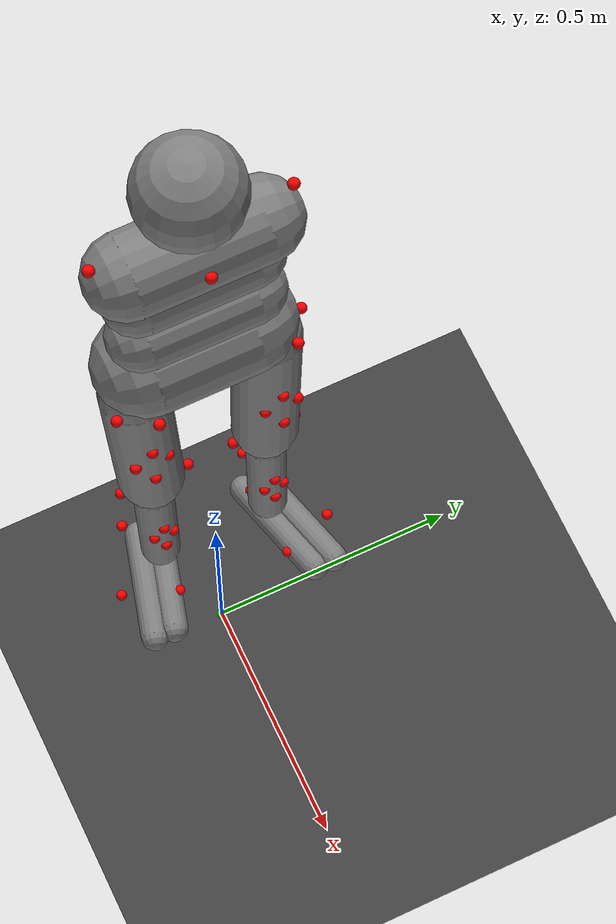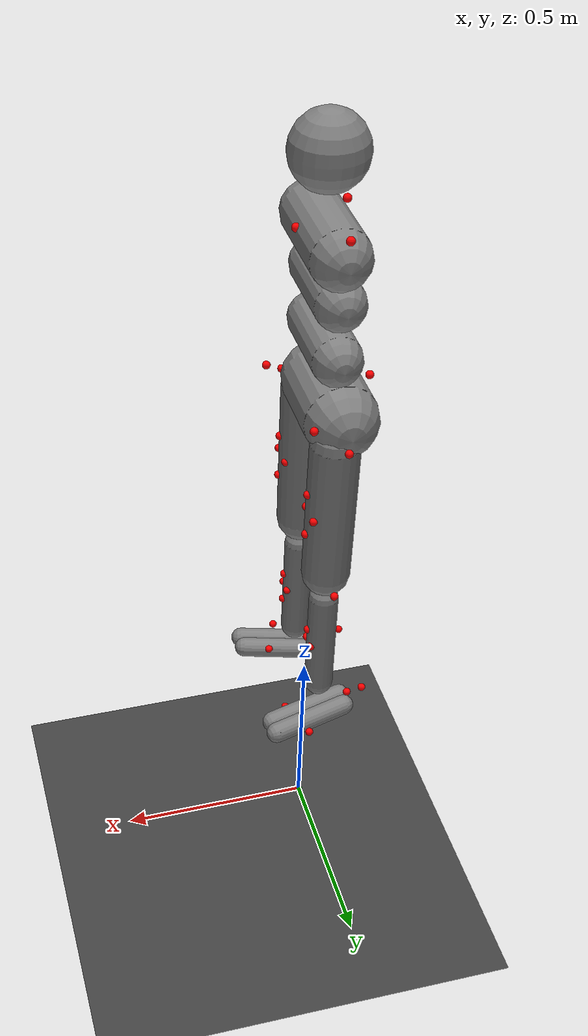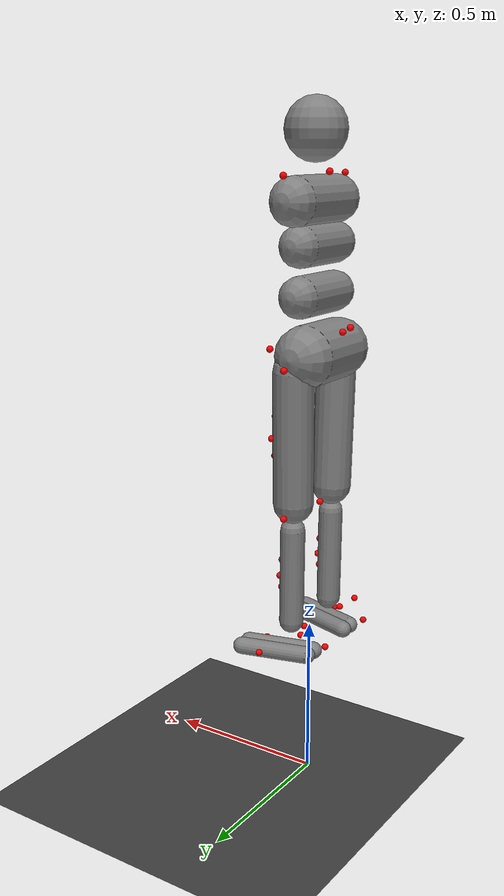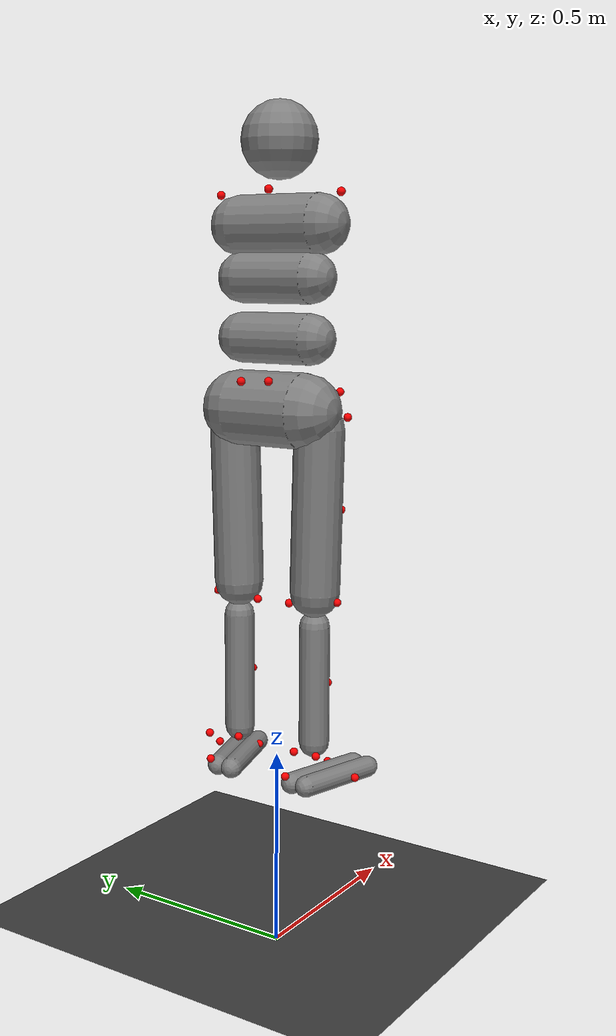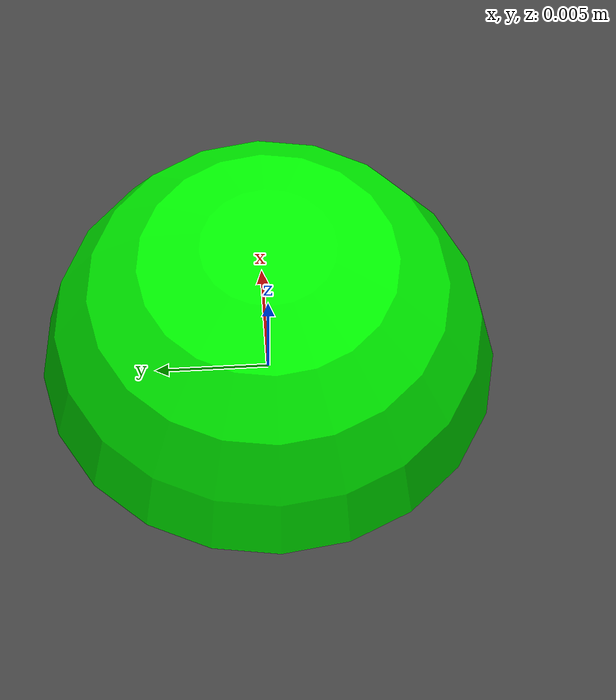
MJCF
<mujoco model="humanoid">
  <compiler settotalmass="50.0"/>
  <default>
    <default class="/"/>
    <default class="left_leg/"/>
    <default class="right_leg/"/>
  </default>
  <asset>
    <texture name="texplane" type="2d" builtin="checker" rgb1="0.20000000000000001 0.20000000000000001 0.20000000000000001" rgb2="0.29999999999999999 0.29999999999999999 0.29999999999999999" width="512" height="512"/>
    <material name="grid" class="/" texture="texplane" texrepeat="1 1" texuniform="true" reflectance="0.0"/>
  </asset>
  <worldbody>
    <geom name="floor" class="/" type="plane" conaffinity="1" size="100 100 0.20000000000000001" material="grid" pos="0 0 0"/>
    <body name="torso" pos="0.0000 0.0000 1.7925">
      <light name="top" class="/" mode="trackcom" pos="0 0 2"/>
      <camera name="back" class="/" mode="trackcom" pos="-3 0 1" xyaxes="0 -1 0 1 0 2"/>
      <camera name="side" class="/" mode="trackcom" pos="0 -3 1" xyaxes="1 0 0 0 1 2"/>
      <freejoint name="root"/>
      <geom name="torso" class="/" type="capsule" size="0.0700" fromto="0.0000 -0.1103 0.0000 0.0000 0.1103 0.0000"/>
      <site name="C7" class="/" type="sphere" rgba="1 0 0 1" size="0.0100" pos="-0.0450 0.0000 0.0779"/>
      <site name="RSHO" class="/" type="sphere" rgba="1 0 0 1" size="0.0100" pos="0.0000 -0.1654 0.0700"/>
      <site name="LSHO" class="/" type="sphere" rgba="1 0 0 1" size="0.0100" pos="0.0000 0.1654 0.0700"/>
      <site name="CLAV" class="/" type="sphere" rgba="1 0 0 1" size="0.0100" pos="0.0658 0.0000 0.0239"/>
      <geom name="upper_waist" class="/" type="capsule" size="0.0600" fromto="-0.0100 -0.0945 -0.1200 -0.0100 0.0945 -0.1200"/>
      <body name="head" pos="0.0000 0.0000 0.1900">
        <geom name="head" class="/" type="sphere" size="0.0900" pos="0.0000 0.0000 0.0000"/>
      </body>
      <camera name="egocentric" class="/" fovy="80.0" pos="0.089999999999999997 0 0" xyaxes="0 -1 0 0.10000000000000001 1 2"/>
      <body name="lower_waist" pos="-0.0100 0.0000 -0.2600" quat="1 0 -0.002 0">
        <geom name="lower_waist" class="/" type="capsule" size="0.0600" fromto="0.0000 -0.0945 0.0000 0.0000 0.0945 0.0000"/>
        <joint name="abdomen_z" class="/" type="hinge" pos="0 0 0.065000000000000002" axis="0 0 1" limited="true" solimplimit="0 0.98999999999999999 0.01" stiffness="20.0" range="-45 45" armature="0.01" damping="5.0"/>
        <joint name="abdomen_y" class="/" type="hinge" pos="0 0 0.065000000000000002" axis="0 1 0" limited="true" solimplimit="0 0.98999999999999999 0.01" stiffness="10.0" range="-75 30" armature="0.01" damping="5.0"/>
        <body name="pelvis" pos="0.0000 0.0000 -0.1650" quat="1 0 -0.002 0">
          <joint name="abdomen_x" class="/" type="hinge" pos="0 0 0.10000000000000001" axis="1 0 0" limited="true" solimplimit="0 0.98999999999999999 0.01" stiffness="10.0" range="-35 35" armature="0.01" damping="5.0"/>
          <geom name="butt" class="/" type="capsule" size="0.0900" fromto="-0.0200 -0.0903 0.0000 -0.0200 0.0903 0.0000"/>
          <site name="RASI" class="/" type="sphere" rgba="1 0 0 1" size="0.0100" pos="0.1013 -0.1148 0.0365"/>
          <site name="LASI" class="/" type="sphere" rgba="1 0 0 1" size="0.0100" pos="0.0624 0.1479 0.0219"/>
          <site name="RPSI" class="/" type="sphere" rgba="1 0 0 1" size="0.0100" pos="-0.0903 -0.0385 0.0725"/>
          <site name="LPSI" class="/" type="sphere" rgba="1 0 0 1" size="0.0100" pos="-0.1037 0.0288 0.0704"/>
          <site name="left_leg_site" class="/" size="9.9999999999999995e-07 9.9999999999999995e-07 9.9999999999999995e-07" pos="0 0.1202500737954795 -0.040000000000000001"/>
          <body pos="0.0000 0.1203 -0.0400" name="left_leg/">
            <body name="left_leg/thigh" pos="0.0000 0.0000 0.0000">
              <joint name="left_leg/hip_x" class="left_leg/" type="hinge" axis="1 0 0" limited="true" solimplimit="0 0.98999999999999999 0.01" stiffness="10.0" range="-25 5" armature="0.01" damping="5.0"/>
              <joint name="left_leg/hip_z" class="left_leg/" type="hinge" axis="0 0 1" limited="true" solimplimit="0 0.98999999999999999 0.01" stiffness="10.0" range="-60 35" armature="0.01" damping="5.0"/>
              <joint name="left_leg/hip_y" class="left_leg/" type="hinge" axis="0 1 0" limited="true" solimplimit="0 0.98999999999999999 0.01" stiffness="20.0" range="-110 20" armature="0.01" damping="5.0"/>
              <geom name="left_leg/thigh" class="left_leg/" type="capsule" size="0.0603" fromto="0.0000 0.0000 0.0000 0.0000 -0.0100 -0.3943"/>
              <site name="left_leg/LGT" class="left_leg/" type="sphere" rgba="1 0 0 1" size="0.0100" pos="-0.0103 0.0669 0.0153"/>
              <site name="left_leg/LT1" class="left_leg/" type="sphere" rgba="1 0 0 1" size="0.0100" pos="0.0603 0.0000 -0.1380"/>
              <site name="left_leg/LT2" class="left_leg/" type="sphere" rgba="1 0 0 1" size="0.0100" pos="0.0522 0.0301 -0.1971"/>
              <site name="left_leg/LT3" class="left_leg/" type="sphere" rgba="1 0 0 1" size="0.0100" pos="0.0603 0.0000 -0.2563"/>
              <site name="left_leg/LT4" class="left_leg/" type="sphere" rgba="1 0 0 1" size="0.0100" pos="0.0522 -0.0301 -0.1971"/>
              <body name="left_leg/shin" pos="0.0000 -0.0100 -0.4785">
                <joint name="left_leg/knee" class="left_leg/" type="hinge" pos="0 0 0.02" axis="0 -1 0" limited="true" solimplimit="0 0.98999999999999999 0.01" stiffness="1.0" range="-160 2" armature="0.01" damping="0.2"/>
                <geom name="left_leg/shin" class="left_leg/" type="capsule" size="0.0370" fromto="0.0000 0.0000 0.0000 0.0000 0.0000 -0.2925"/>
                <site name="left_leg/LKNL" class="left_leg/" type="sphere" rgba="1 0 0 1" size="0.0100" pos="-0.0055 0.0608 0.0528"/>
                <site name="left_leg/LKNM" class="left_leg/" type="sphere" rgba="1 0 0 1" size="0.0100" pos="-0.0056 -0.0596 0.0463"/>
                <site name="left_leg/LS1" class="left_leg/" type="sphere" rgba="1 0 0 1" size="0.0100" pos="0.0370 0.0000 -0.1024"/>
                <site name="left_leg/LS2" class="left_leg/" type="sphere" rgba="1 0 0 1" size="0.0100" pos="0.0321 0.0185 -0.1463"/>
                <site name="left_leg/LS3" class="left_leg/" type="sphere" rgba="1 0 0 1" size="0.0100" pos="0.0370 0.0000 -0.1902"/>
                <site name="left_leg/LS4" class="left_leg/" type="sphere" rgba="1 0 0 1" size="0.0100" pos="0.0321 -0.0185 -0.1463"/>
                <body name="left_leg/foot" pos="0.0000 0.0000 -0.3820">
                  <joint name="left_leg/ankle_y" class="left_leg/" type="hinge" pos="0 0 0.080000000000000002" axis="0 1 0" limited="true" solimplimit="0 0.98999999999999999 0.01" stiffness="6.0" range="-50 50" armature="0.01" damping="0.2"/>
                  <joint name="left_leg/ankle_x" class="left_leg/" type="hinge" pos="0 0 0.040000000000000001" axis="1 0 0.5" limited="true" solimplimit="0 0.98999999999999999 0.01" stiffness="3.0" range="-50 50" armature="0.01" damping="0.2"/>
                  <geom name="left_leg/right_foot" class="left_leg/" type="capsule" size="0.0264" fromto="-0.0677 0.0200 0.0000 0.1307 0.0753 0.0000"/>
                  <geom name="left_leg/left_foot" class="left_leg/" type="capsule" size="0.0264" fromto="-0.0677 -0.0200 0.0000 0.1307 0.0353 0.0000"/>
                  <site name="left_leg/LANL" class="left_leg/" type="sphere" rgba="1 0 0 1" size="0.0100" pos="-0.0641 0.0481 0.0772"/>
                  <site name="left_leg/LANM" class="left_leg/" type="sphere" rgba="1 0 0 1" size="0.0100" pos="-0.0346 -0.0196 0.0723"/>
                  <site name="left_leg/LHEE" class="left_leg/" type="sphere" rgba="1 0 0 1" size="0.0100" pos="-0.1223 0.0031 0.0362"/>
                  <site name="left_leg/LM1" class="left_leg/" type="sphere" rgba="1 0 0 1" size="0.0100" pos="0.0869 0.0006 0.0110"/>
                  <site name="left_leg/LM5" class="left_leg/" type="sphere" rgba="1 0 0 1" size="0.0100" pos="0.0503 0.1005 0.0084"/>
                  <body name="left_leg/ffp_0_0" pos="-0.0700 -0.0464 -0.0264"/>
                  <body name="left_leg/ffp_0_1" pos="-0.0700 -0.0253 -0.0264"/>
                  <body name="left_leg/ffp_0_2" pos="-0.0700 -0.0041 -0.0264"/>
                  <body name="left_leg/ffp_0_3" pos="-0.0700 0.0170 -0.0264"/>
                  <body name="left_leg/ffp_0_4" pos="-0.0700 0.0381 -0.0264"/>
                  <body name="left_leg/ffp_1_0" pos="-0.0472 -0.0464 -0.0264"/>
                  <body name="left_leg/ffp_1_1" pos="-0.0472 -0.0253 -0.0264"/>
                  <body name="left_leg/ffp_1_2" pos="-0.0472 -0.0041 -0.0264"/>
                  <body name="left_leg/ffp_1_3" pos="-0.0472 0.0170 -0.0264"/>
                  <body name="left_leg/ffp_1_4" pos="-0.0472 0.0381 -0.0264"/>
                  <body name="left_leg/ffp_2_0" pos="-0.0243 -0.0464 -0.0264"/>
                  <body name="left_leg/ffp_2_1" pos="-0.0243 -0.0253 -0.0264"/>
                  <body name="left_leg/ffp_2_2" pos="-0.0243 -0.0041 -0.0264"/>
                  <body name="left_leg/ffp_2_3" pos="-0.0243 0.0170 -0.0264"/>
                  <body name="left_leg/ffp_2_4" pos="-0.0243 0.0381 -0.0264"/>
                  <body name="left_leg/ffp_3_0" pos="-0.0015 -0.0464 -0.0264"/>
                  <body name="left_leg/ffp_3_1" pos="-0.0015 -0.0253 -0.0264"/>
                  <body name="left_leg/ffp_3_2" pos="-0.0015 -0.0041 -0.0264"/>
                  <body name="left_leg/ffp_3_3" pos="-0.0015 0.0170 -0.0264"/>
                  <body name="left_leg/ffp_3_4" pos="-0.0015 0.0381 -0.0264"/>
                  <body name="left_leg/ffp_4_0" pos="0.0213 -0.0464 -0.0264"/>
                  <body name="left_leg/ffp_4_1" pos="0.0213 -0.0253 -0.0264"/>
                  <body name="left_leg/ffp_4_2" pos="0.0213 -0.0041 -0.0264"/>
                  <body name="left_leg/ffp_4_3" pos="0.0213 0.0170 -0.0264"/>
                  <body name="left_leg/ffp_4_4" pos="0.0213 0.0381 -0.0264"/>
                  <body name="left_leg/ffp_5_0" pos="0.0442 -0.0464 -0.0264"/>
                  <body name="left_leg/ffp_5_1" pos="0.0442 -0.0253 -0.0264"/>
                  <body name="left_leg/ffp_5_2" pos="0.0442 -0.0041 -0.0264"/>
                  <body name="left_leg/ffp_5_3" pos="0.0442 0.0170 -0.0264"/>
                  <body name="left_leg/ffp_5_4" pos="0.0442 0.0381 -0.0264"/>
                  <body name="left_leg/ffp_6_0" pos="0.0670 -0.0464 -0.0264"/>
                  <body name="left_leg/ffp_6_1" pos="0.0670 -0.0253 -0.0264"/>
                  <body name="left_leg/ffp_6_2" pos="0.0670 -0.0041 -0.0264"/>
                  <body name="left_leg/ffp_6_3" pos="0.0670 0.0170 -0.0264"/>
                  <body name="left_leg/ffp_6_4" pos="0.0670 0.0381 -0.0264"/>
                  <body name="left_leg/ffp_7_0" pos="0.0898 -0.0464 -0.0264"/>
                  <body name="left_leg/ffp_7_1" pos="0.0898 -0.0253 -0.0264"/>
                  <body name="left_leg/ffp_7_2" pos="0.0898 -0.0041 -0.0264"/>
                  <body name="left_leg/ffp_7_3" pos="0.0898 0.0170 -0.0264"/>
                  <body name="left_leg/ffp_7_4" pos="0.0898 0.0381 -0.0264"/>
                  <body name="left_leg/ffp_8_0" pos="0.1126 -0.0464 -0.0264"/>
                  <body name="left_leg/ffp_8_1" pos="0.1126 -0.0253 -0.0264"/>
                  <body name="left_leg/ffp_8_2" pos="0.1126 -0.0041 -0.0264"/>
                  <body name="left_leg/ffp_8_3" pos="0.1126 0.0170 -0.0264"/>
                  <body name="left_leg/ffp_8_4" pos="0.1126 0.0381 -0.0264"/>
                </body>
              </body>
            </body>
          </body>
          <site name="right_leg_site" class="/" size="9.9999999999999995e-07 9.9999999999999995e-07 9.9999999999999995e-07" pos="0 -0.1202500737954795 -0.040000000000000001"/>
          <body pos="0.0000 -0.1203 -0.0400" name="right_leg/">
            <body name="right_leg/thigh" pos="0.0000 0.0000 0.0000">
              <joint name="right_leg/hip_x" class="right_leg/" type="hinge" axis="1 0 0" limited="true" solimplimit="0 0.98999999999999999 0.01" stiffness="10.0" range="-25 5" armature="0.01" damping="5.0"/>
              <joint name="right_leg/hip_z" class="right_leg/" type="hinge" axis="0 0 1" limited="true" solimplimit="0 0.98999999999999999 0.01" stiffness="10.0" range="-60 35" armature="0.01" damping="5.0"/>
              <joint name="right_leg/hip_y" class="right_leg/" type="hinge" axis="0 1 0" limited="true" solimplimit="0 0.98999999999999999 0.01" stiffness="20.0" range="-110 20" armature="0.01" damping="5.0"/>
              <geom name="right_leg/thigh" class="right_leg/" type="capsule" size="0.0603" fromto="0.0000 0.0000 0.0000 0.0000 0.0100 -0.3943"/>
              <site name="right_leg/RGT" class="right_leg/" type="sphere" rgba="1 0 0 1" size="0.0100" pos="0.0470 -0.0484 0.0245"/>
              <site name="right_leg/RT1" class="right_leg/" type="sphere" rgba="1 0 0 1" size="0.0100" pos="0.0603 0.0000 -0.1380"/>
              <site name="right_leg/RT2" class="right_leg/" type="sphere" rgba="1 0 0 1" size="0.0100" pos="0.0522 0.0301 -0.1971"/>
              <site name="right_leg/RT3" class="right_leg/" type="sphere" rgba="1 0 0 1" size="0.0100" pos="0.0603 0.0000 -0.2563"/>
              <site name="right_leg/RT4" class="right_leg/" type="sphere" rgba="1 0 0 1" size="0.0100" pos="0.0522 -0.0301 -0.1971"/>
              <body name="right_leg/shin" pos="0.0000 0.0100 -0.4785">
                <joint name="right_leg/knee" class="right_leg/" type="hinge" pos="0 0 0.02" axis="0 -1 0" limited="true" solimplimit="0 0.98999999999999999 0.01" stiffness="1.0" range="-160 2" armature="0.01" damping="0.2"/>
                <geom name="right_leg/shin" class="right_leg/" type="capsule" size="0.0370" fromto="0.0000 0.0000 0.0000 0.0000 0.0000 -0.2925"/>
                <site name="right_leg/RKNL" class="right_leg/" type="sphere" rgba="1 0 0 1" size="0.0100" pos="0.0039 -0.0601 0.0664"/>
                <site name="right_leg/RKNM" class="right_leg/" type="sphere" rgba="1 0 0 1" size="0.0100" pos="-0.0023 0.0715 0.0479"/>
                <site name="right_leg/RS1" class="right_leg/" type="sphere" rgba="1 0 0 1" size="0.0100" pos="0.0370 0.0000 -0.1024"/>
                <site name="right_leg/RS2" class="right_leg/" type="sphere" rgba="1 0 0 1" size="0.0100" pos="0.0321 0.0185 -0.1463"/>
                <site name="right_leg/RS3" class="right_leg/" type="sphere" rgba="1 0 0 1" size="0.0100" pos="0.0370 0.0000 -0.1902"/>
                <site name="right_leg/RS4" class="right_leg/" type="sphere" rgba="1 0 0 1" size="0.0100" pos="0.0321 -0.0185 -0.1463"/>
                <body name="right_leg/foot" pos="0.0000 0.0000 -0.3820">
                  <joint name="right_leg/ankle_y" class="right_leg/" type="hinge" pos="0 0 0.080000000000000002" axis="0 1 0" limited="true" solimplimit="0 0.98999999999999999 0.01" stiffness="6.0" range="-50 50" armature="0.01" damping="0.2"/>
                  <joint name="right_leg/ankle_x" class="right_leg/" type="hinge" pos="0 0 0.040000000000000001" axis="1 0 0.5" limited="true" solimplimit="0 0.98999999999999999 0.01" stiffness="3.0" range="-50 50" armature="0.01" damping="0.2"/>
                  <geom name="right_leg/right_foot" class="right_leg/" type="capsule" size="0.0264" fromto="-0.0677 -0.0200 0.0000 0.1307 -0.0753 0.0000"/>
                  <geom name="right_leg/left_foot" class="right_leg/" type="capsule" size="0.0264" fromto="-0.0677 0.0200 0.0000 0.1307 -0.0353 0.0000"/>
                  <site name="right_leg/RANL" class="right_leg/" type="sphere" rgba="1 0 0 1" size="0.0100" pos="-0.0688 -0.0487 0.0830"/>
                  <site name="right_leg/RANM" class="right_leg/" type="sphere" rgba="1 0 0 1" size="0.0100" pos="-0.0553 0.0222 0.0758"/>
                  <site name="right_leg/RHEE" class="right_leg/" type="sphere" rgba="1 0 0 1" size="0.0100" pos="-0.1284 -0.0003 0.0412"/>
                  <site name="right_leg/RM1" class="right_leg/" type="sphere" rgba="1 0 0 1" size="0.0100" pos="0.0717 0.0039 0.0150"/>
                  <site name="right_leg/RM5" class="right_leg/" type="sphere" rgba="1 0 0 1" size="0.0100" pos="0.0315 -0.0988 0.0074"/>
                  <body name="right_leg/ffp_0_0" pos="-0.0700 -0.0464 -0.0264"/>
                  <body name="right_leg/ffp_0_1" pos="-0.0700 -0.0253 -0.0264"/>
                  <body name="right_leg/ffp_0_2" pos="-0.0700 -0.0041 -0.0264"/>
                  <body name="right_leg/ffp_0_3" pos="-0.0700 0.0170 -0.0264"/>
                  <body name="right_leg/ffp_0_4" pos="-0.0700 0.0381 -0.0264"/>
                  <body name="right_leg/ffp_1_0" pos="-0.0472 -0.0464 -0.0264"/>
                  <body name="right_leg/ffp_1_1" pos="-0.0472 -0.0253 -0.0264"/>
                  <body name="right_leg/ffp_1_2" pos="-0.0472 -0.0041 -0.0264"/>
                  <body name="right_leg/ffp_1_3" pos="-0.0472 0.0170 -0.0264"/>
                  <body name="right_leg/ffp_1_4" pos="-0.0472 0.0381 -0.0264"/>
                  <body name="right_leg/ffp_2_0" pos="-0.0243 -0.0464 -0.0264"/>
                  <body name="right_leg/ffp_2_1" pos="-0.0243 -0.0253 -0.0264"/>
                  <body name="right_leg/ffp_2_2" pos="-0.0243 -0.0041 -0.0264"/>
                  <body name="right_leg/ffp_2_3" pos="-0.0243 0.0170 -0.0264"/>
                  <body name="right_leg/ffp_2_4" pos="-0.0243 0.0381 -0.0264"/>
                  <body name="right_leg/ffp_3_0" pos="-0.0015 -0.0464 -0.0264"/>
                  <body name="right_leg/ffp_3_1" pos="-0.0015 -0.0253 -0.0264"/>
                  <body name="right_leg/ffp_3_2" pos="-0.0015 -0.0041 -0.0264"/>
                  <body name="right_leg/ffp_3_3" pos="-0.0015 0.0170 -0.0264"/>
                  <body name="right_leg/ffp_3_4" pos="-0.0015 0.0381 -0.0264"/>
                  <body name="right_leg/ffp_4_0" pos="0.0213 -0.0464 -0.0264"/>
                  <body name="right_leg/ffp_4_1" pos="0.0213 -0.0253 -0.0264"/>
                  <body name="right_leg/ffp_4_2" pos="0.0213 -0.0041 -0.0264"/>
                  <body name="right_leg/ffp_4_3" pos="0.0213 0.0170 -0.0264"/>
                  <body name="right_leg/ffp_4_4" pos="0.0213 0.0381 -0.0264"/>
                  <body name="right_leg/ffp_5_0" pos="0.0442 -0.0464 -0.0264"/>
                  <body name="right_leg/ffp_5_1" pos="0.0442 -0.0253 -0.0264"/>
                  <body name="right_leg/ffp_5_2" pos="0.0442 -0.0041 -0.0264"/>
                  <body name="right_leg/ffp_5_3" pos="0.0442 0.0170 -0.0264"/>
                  <body name="right_leg/ffp_5_4" pos="0.0442 0.0381 -0.0264"/>
                  <body name="right_leg/ffp_6_0" pos="0.0670 -0.0464 -0.0264"/>
                  <body name="right_leg/ffp_6_1" pos="0.0670 -0.0253 -0.0264"/>
                  <body name="right_leg/ffp_6_2" pos="0.0670 -0.0041 -0.0264"/>
                  <body name="right_leg/ffp_6_3" pos="0.0670 0.0170 -0.0264"/>
                  <body name="right_leg/ffp_6_4" pos="0.0670 0.0381 -0.0264"/>
                  <body name="right_leg/ffp_7_0" pos="0.0898 -0.0464 -0.0264"/>
                  <body name="right_leg/ffp_7_1" pos="0.0898 -0.0253 -0.0264"/>
                  <body name="right_leg/ffp_7_2" pos="0.0898 -0.0041 -0.0264"/>
                  <body name="right_leg/ffp_7_3" pos="0.0898 0.0170 -0.0264"/>
                  <body name="right_leg/ffp_7_4" pos="0.0898 0.0381 -0.0264"/>
                  <body name="right_leg/ffp_8_0" pos="0.1126 -0.0464 -0.0264"/>
                  <body name="right_leg/ffp_8_1" pos="0.1126 -0.0253 -0.0264"/>
                  <body name="right_leg/ffp_8_2" pos="0.1126 -0.0041 -0.0264"/>
                  <body name="right_leg/ffp_8_3" pos="0.1126 0.0170 -0.0264"/>
                  <body name="right_leg/ffp_8_4" pos="0.1126 0.0381 -0.0264"/>
                </body>
              </body>
            </body>
          </body>
        </body>
      </body>
    </body>
    <body name="m0" mocap="true" pos="0 0 0">
      <geom name="m0" class="/" type="sphere" size="0.01" rgba="0 1 0 1" mass="0.0"/>
    </body>
    <body name="m1" mocap="true" pos="0 0 0">
      <geom name="m1" class="/" type="sphere" size="0.01" rgba="0 1 0 1" mass="0.0"/>
    </body>
    <body name="m2" mocap="true" pos="0 0 0">
      <geom name="m2" class="/" type="sphere" size="0.01" rgba="0 1 0 1" mass="0.0"/>
    </body>
    <body name="m3" mocap="true" pos="0 0 0">
      <geom name="m3" class="/" type="sphere" size="0.01" rgba="0 1 0 1" mass="0.0"/>
    </body>
    <body name="m4" mocap="true" pos="0 0 0">
      <geom name="m4" class="/" type="sphere" size="0.01" rgba="0 1 0 1" mass="0.0"/>
    </body>
    <body name="m5" mocap="true" pos="0 0 0">
      <geom name="m5" class="/" type="sphere" size="0.01" rgba="0 1 0 1" mass="0.0"/>
    </body>
    <body name="m6" mocap="true" pos="0 0 0">
      <geom name="m6" class="/" type="sphere" size="0.01" rgba="0 1 0 1" mass="0.0"/>
    </body>
    <body name="m7" mocap="true" pos="0 0 0">
      <geom name="m7" class="/" type="sphere" size="0.01" rgba="0 1 0 1" mass="0.0"/>
    </body>
    <body name="m8" mocap="true" pos="0 0 0">
      <geom name="m8" class="/" type="sphere" size="0.01" rgba="0 1 0 1" mass="0.0"/>
    </body>
    <body name="m9" mocap="true" pos="0 0 0">
      <geom name="m9" class="/" type="sphere" size="0.01" rgba="0 1 0 1" mass="0.0"/>
    </body>
    <body name="m10" mocap="true" pos="0 0 0">
      <geom name="m10" class="/" type="sphere" size="0.01" rgba="0 1 0 1" mass="0.0"/>
    </body>
    <body name="m11" mocap="true" pos="0 0 0">
      <geom name="m11" class="/" type="sphere" size="0.01" rgba="0 1 0 1" mass="0.0"/>
    </body>
    <body name="m12" mocap="true" pos="0 0 0">
      <geom name="m12" class="/" type="sphere" size="0.01" rgba="0 1 0 1" mass="0.0"/>
    </body>
    <body name="m13" mocap="true" pos="0 0 0">
      <geom name="m13" class="/" type="sphere" size="0.01" rgba="0 1 0 1" mass="0.0"/>
    </body>
    <body name="m14" mocap="true" pos="0 0 0">
      <geom name="m14" class="/" type="sphere" size="0.01" rgba="0 1 0 1" mass="0.0"/>
    </body>
    <body name="m15" mocap="true" pos="0 0 0">
      <geom name="m15" class="/" type="sphere" size="0.01" rgba="0 1 0 1" mass="0.0"/>
    </body>
    <body name="m16" mocap="true" pos="0 0 0">
      <geom name="m16" class="/" type="sphere" size="0.01" rgba="0 1 0 1" mass="0.0"/>
    </body>
    <body name="m17" mocap="true" pos="0 0 0">
      <geom name="m17" class="/" type="sphere" size="0.01" rgba="0 1 0 1" mass="0.0"/>
    </body>
    <body name="m18" mocap="true" pos="0 0 0">
      <geom name="m18" class="/" type="sphere" size="0.01" rgba="0 1 0 1" mass="0.0"/>
    </body>
    <body name="m19" mocap="true" pos="0 0 0">
      <geom name="m19" class="/" type="sphere" size="0.01" rgba="0 1 0 1" mass="0.0"/>
    </body>
    <body name="m20" mocap="true" pos="0 0 0">
      <geom name="m20" class="/" type="sphere" size="0.01" rgba="0 1 0 1" mass="0.0"/>
    </body>
    <body name="m21" mocap="true" pos="0 0 0">
      <geom name="m21" class="/" type="sphere" size="0.01" rgba="0 1 0 1" mass="0.0"/>
    </body>
    <body name="m22" mocap="true" pos="0 0 0">
      <geom name="m22" class="/" type="sphere" size="0.01" rgba="0 1 0 1" mass="0.0"/>
    </body>
    <body name="m23" mocap="true" pos="0 0 0">
      <geom name="m23" class="/" type="sphere" size="0.01" rgba="0 1 0 1" mass="0.0"/>
    </body>
    <body name="m24" mocap="true" pos="0 0 0">
      <geom name="m24" class="/" type="sphere" size="0.01" rgba="0 1 0 1" mass="0.0"/>
    </body>
    <body name="m25" mocap="true" pos="0 0 0">
      <geom name="m25" class="/" type="sphere" size="0.01" rgba="0 1 0 1" mass="0.0"/>
    </body>
    <body name="m26" mocap="true" pos="0 0 0">
      <geom name="m26" class="/" type="sphere" size="0.01" rgba="0 1 0 1" mass="0.0"/>
    </body>
    <body name="m27" mocap="true" pos="0 0 0">
      <geom name="m27" class="/" type="sphere" size="0.01" rgba="0 1 0 1" mass="0.0"/>
    </body>
    <body name="m28" mocap="true" pos="0 0 0">
      <geom name="m28" class="/" type="sphere" size="0.01" rgba="0 1 0 1" mass="0.0"/>
    </body>
    <body name="m29" mocap="true" pos="0 0 0">
      <geom name="m29" class="/" type="sphere" size="0.01" rgba="0 1 0 1" mass="0.0"/>
    </body>
    <body name="m30" mocap="true" pos="0 0 0">
      <geom name="m30" class="/" type="sphere" size="0.01" rgba="0 1 0 1" mass="0.0"/>
    </body>
    <body name="m31" mocap="true" pos="0 0 0">
      <geom name="m31" class="/" type="sphere" size="0.01" rgba="0 1 0 1" mass="0.0"/>
    </body>
    <body name="m32" mocap="true" pos="0 0 0">
      <geom name="m32" class="/" type="sphere" size="0.01" rgba="0 1 0 1" mass="0.0"/>
    </body>
    <body name="m33" mocap="true" pos="0 0 0">
      <geom name="m33" class="/" type="sphere" size="0.01" rgba="0 1 0 1" mass="0.0"/>
    </body>
    <body name="m34" mocap="true" pos="0 0 0">
      <geom name="m34" class="/" type="sphere" size="0.01" rgba="0 1 0 1" mass="0.0"/>
    </body>
    <body name="m35" mocap="true" pos="0 0 0">
      <geom name="m35" class="/" type="sphere" size="0.01" rgba="0 1 0 1" mass="0.0"/>
    </body>
    <body name="m36" mocap="true" pos="0 0 0">
      <geom name="m36" class="/" type="sphere" size="0.01" rgba="0 1 0 1" mass="0.0"/>
    </body>
    <body name="m37" mocap="true" pos="0 0 0">
      <geom name="m37" class="/" type="sphere" size="0.01" rgba="0 1 0 1" mass="0.0"/>
    </body>
    <body name="m38" mocap="true" pos="0 0 0">
      <geom name="m38" class="/" type="sphere" size="0.01" rgba="0 1 0 1" mass="0.0"/>
    </body>
    <body name="m39" mocap="true" pos="0 0 0">
      <geom name="m39" class="/" type="sphere" size="0.01" rgba="0 1 0 1" mass="0.0"/>
    </body>
  </worldbody>
  <equality>
    <weld name="world_root" class="/" active="false" body1="torso" relpose="0 0 -2 1 0 0 0"/>
    <joint name="abdomen_y" class="/" active="true" joint1="abdomen_y"/>
    <joint name="abdomen_z" class="/" active="true" joint1="abdomen_z"/>
    <joint name="abdomen_x" class="/" active="true" joint1="abdomen_x"/>
  </equality>
  <actuator>
    <motor name="abdomen_z" class="/" gear="40" joint="abdomen_z"/>
    <motor name="abdomen_y" class="/" gear="40" joint="abdomen_y"/>
    <motor name="abdomen_x" class="/" gear="40" joint="abdomen_x"/>
    <motor name="left_leg/hip_x" class="left_leg/" gear="40" joint="left_leg/hip_x"/>
    <motor name="left_leg/hip_z" class="left_leg/" gear="40" joint="left_leg/hip_z"/>
    <motor name="left_leg/hip_y" class="left_leg/" gear="120" joint="left_leg/hip_y"/>
    <motor name="left_leg/knee" class="left_leg/" gear="80" joint="left_leg/knee"/>
    <motor name="left_leg/ankle_y" class="left_leg/" gear="20" joint="left_leg/ankle_y"/>
    <motor name="left_leg/ankle_x" class="left_leg/" gear="20" joint="left_leg/ankle_x"/>
    <motor name="right_leg/hip_x" class="right_leg/" gear="40" joint="right_leg/hip_x"/>
    <motor name="right_leg/hip_z" class="right_leg/" gear="40" joint="right_leg/hip_z"/>
    <motor name="right_leg/hip_y" class="right_leg/" gear="120" joint="right_leg/hip_y"/>
    <motor name="right_leg/knee" class="right_leg/" gear="80" joint="right_leg/knee"/>
    <motor name="right_leg/ankle_y" class="right_leg/" gear="20" joint="right_leg/ankle_y"/>
    <motor name="right_leg/ankle_x" class="right_leg/" gear="20" joint="right_leg/ankle_x"/>
  </actuator>
</mujoco>
